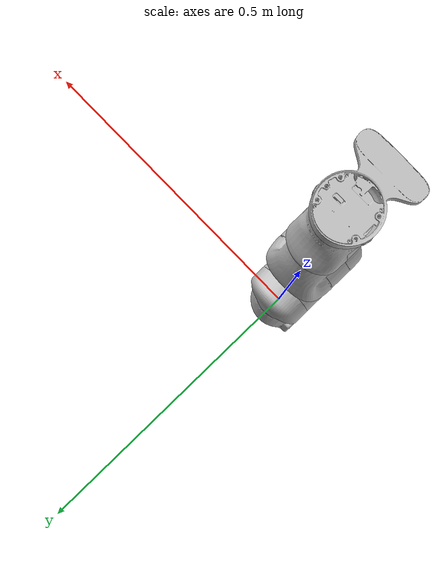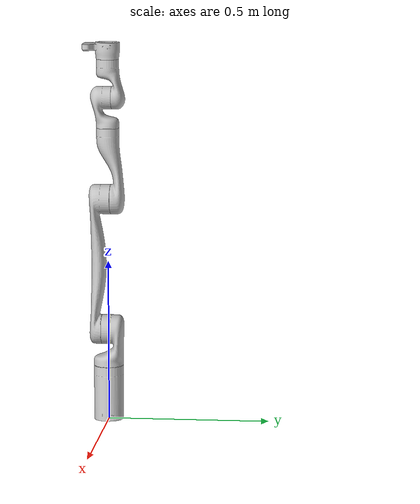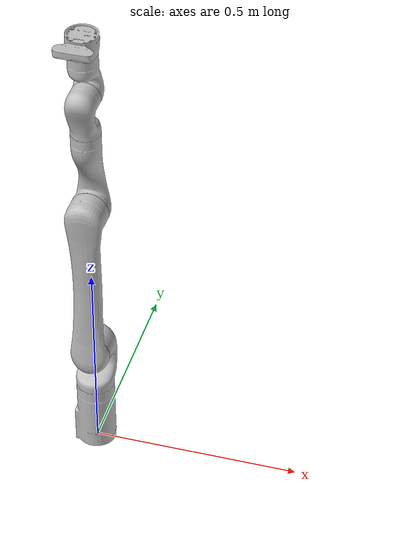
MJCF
<mujoco model="GEN3-6DOF">
  <compiler angle="radian" meshdir="meshes" autolimits="true" eulerseq="zyx"/>
  <option integrator="implicitfast" timestep="0.001" gravity="0 0 -9.81" />
  <default>
    <default class="robot">
      <joint axis="0 0 1" range="-3.1415 3.1415" damping="0.01" armature="0.01" frictionloss="0.01" ref="0.0"/>
      <default class="visual">
        <geom type="mesh" contype="0" conaffinity="0" group="2"/>
      </default>
      <default class="collision">
        <geom type="capsule" group="3"/>
      </default>
      <default class="position">
        <position ctrlrange="-3.1415 3.1415" kp="5000" kv="140" forcerange="-150 150"/>
        <default class="position_unlimited">
          <position ctrlrange="-6.2831 6.2831"/>
        </default>
        <default class="position_wrist">
          <position kp="1200" kv="70" forcerange="-70 370"/>
        </default>
      </default>
    </default>
  </default>

  <asset>
    <material name="gen3_gray" rgba="0.75294 0.75294 0.75294 1" />
    <material name="default_material" rgba="0.7 0.7 0.7 1" />
    <material name="collision_material" rgba="1.0 0.28 0.1 0.9" />
    <mesh name="base_link.STL" file="base_link.STL" content_type="model/stl" />
    <mesh name="shoulder_link.STL" file="shoulder_link.STL" content_type="model/stl" />
    <mesh name="bicep_link.STL" file="bicep_link.STL" content_type="model/stl" />
    <mesh name="forearm_link.STL" file="forearm_link.STL" content_type="model/stl" />
    <mesh name="spherical_wrist_1_link.STL" file="spherical_wrist_1_link.STL" content_type="model/stl" />
    <mesh name="spherical_wrist_2_link.STL" file="spherical_wrist_2_link.STL" content_type="model/stl" />
    <mesh name="bracelet_with_vision_link.STL" file="bracelet_with_vision_link.STL" content_type="model/stl" />
  </asset>

  <worldbody>
    <body name="base_link" pos="0.00000000 0.00000000 0.00000000" quat="1 0 0 0" childclass="robot">
      <geom pos="0 0 0" quat="1.0 0.0 0.0 0.0" type="mesh" mesh="base_link.STL" class="collision" />
      <geom pos="0 0 0" quat="1.0 0.0 0.0 0.0" material="gen3_gray" type="mesh" mesh="base_link.STL" class="visual" />

      <body name="shoulder_link" pos="0 0 0.15643" quat="-3.673205103346574e-06 -0.9999999999932537 -0.0 0.0">
        <joint name="joint_1"/>
        <inertial pos="-2.3E-05 -0.010364 -0.07336" quat="1.0 0.0 0.0 0.0" mass="1.377" diaginertia="0.00457 0.004831 0.001409" />
        <geom pos="0 0 0" quat="1.0 0.0 0.0 0.0" type="mesh" mesh="shoulder_link.STL" class="collision" />
        <geom pos="0 0 0" quat="1.0 0.0 0.0 0.0" material="gen3_gray" type="mesh" mesh="shoulder_link.STL" class="visual" />

        <body name="bicep_link" pos="0 0.005375 -0.12838" quat="0.7071054825112363 0.7071080798594735 0.0 0.0">
          <joint name="joint_2" range="-2.24 2.24"/>
          <inertial pos="3.5E-05 -0.208207 -0.01889" quat="1.0 0.0 0.0 0.0" mass="1.262" diaginertia="0.046752 0.00085 0.047188" />
          <geom pos="0 0 0" quat="1.0 0.0 0.0 0.0" type="mesh" mesh="bicep_link.STL" class="collision" />
          <geom pos="0 0 0" quat="1.0 0.0 0.0 0.0" material="gen3_gray" type="mesh" mesh="bicep_link.STL" class="visual" />

          <body name="forearm_link" pos="0 -0.41 0" quat="-3.673205103346574e-06 0.9999999999932537 0.0 -0.0">
            <joint name="joint_3" range="-2.57 2.57"/>
            <inertial pos="1.8E-05 0.076168 -0.01397" quat="1.0 0.0 0.0 0.0" mass="0.93" diaginertia="0.008292 0.000628 0.008464" />
            <geom pos="0 0 0" quat="1.0 0.0 0.0 0.0" type="mesh" mesh="forearm_link.STL" class="collision" />
            <geom pos="0 0 0" quat="1.0 0.0 0.0 0.0" material="gen3_gray" type="mesh" mesh="forearm_link.STL" class="visual" />

            <body name="spherical_wrist_1_link" pos="0 0.20843 -0.006375" quat="0.7071054825112363 0.7071080798594735 0.0 0.0">
              <joint name="joint_4"/>
              <inertial pos="-1E-06 0.008486 -0.062937" quat="1.0 0.0 0.0 0.0" mass="0.6781" diaginertia="0.001645 0.001666 0.000389" />
              <geom pos="0 0 0" quat="1.0 0.0 0.0 0.0" type="mesh" mesh="spherical_wrist_1_link.STL" class="collision" />
              <geom pos="0 0 0" quat="1.0 0.0 0.0 0.0" material="gen3_gray" type="mesh" mesh="spherical_wrist_1_link.STL" class="visual" />

              <body name="spherical_wrist_2_link" pos="0 -0.00017505 -0.10593" quat="0.7071054825112363 -0.7071080798594735 0.0 0.0">
                <joint name="joint_5" range="-2.09 2.09"/>
                <inertial pos="-1E-06 0.046429 -0.008704" quat="1.0 0.0 0.0 0.0" mass="0.678" diaginertia="0.001685 0.0004 0.001696" />
                <geom pos="0 0 0" quat="1.0 0.0 0.0 0.0" type="mesh" mesh="spherical_wrist_2_link.STL" class="collision" />
                <geom pos="0 0 0" quat="1.0 0.0 0.0 0.0" material="gen3_gray" type="mesh" mesh="spherical_wrist_2_link.STL" class="visual" />

                <body name="bracelet_link" pos="0 0.10593 -0.00017505" quat="0.7071054825112363 0.7071080798594735 0.0 0.0">
                  <joint name="joint_6"/>
                  <inertial pos="0.000281 0.011402 -0.029798" quat="1.0 0.0 0.0 0.0" mass="0.5" diaginertia="0.000587 0.000369 0.000609" />
                  <geom pos="0 0 0" quat="1.0 0.0 0.0 0.0" type="mesh" mesh="bracelet_with_vision_link.STL" class="collision" />
                  <geom pos="0 0 0" quat="1.0 0.0 0.0 0.0" material="gen3_gray" type="mesh" mesh="bracelet_with_vision_link.STL" class="visual" />
                </body>
              </body>
            </body>
          </body>
        </body>
      </body>
      <site name="base_link_site" pos="0 0 0" quat="1 0 0 0" />
      <camera name="front_camera" mode="track" fovy="90.0" quat="4.329780281177467e-17 4.329780281177466e-17 0.7071067811865475 0.7071067811865476" pos="0.0 2.0 0.5" />
      <camera name="side_camera" mode="track" fovy="90.0" quat="-0.5 -0.4999999999999999 0.5 0.5000000000000001" pos="-2.0 0.0 0.5" />
    </body>
  </worldbody>

  <actuator>
    <position name="joint_1" joint="joint_1" class="position" />
    <position name="joint_2" joint="joint_2" class="position" />
    <position name="joint_3" joint="joint_3" class="position" />
    <position name="joint_4" joint="joint_4" class="position" />
    <position name="joint_5" joint="joint_5" class="position" />
    <position name="joint_6" joint="joint_6" class="position" />
  </actuator>
  <keyframe>
    <key name="home"
         qpos="-1.42 -0.01 -1.76 -0.54 -0.79 2.44"
         ctrl="-1.42 -0.01 -1.76 -0.54 -0.79 2.44"/>
    <key name="zero"
         qpos="0 0 0 0 0 0"
         ctrl="0 0 0 0 0 0"/>
  </keyframe>

  <contact>
    <exclude body1="base_link" body2="shoulder_link" />
    <exclude body1="shoulder_link" body2="bicep_link" />
    <exclude body1="bicep_link" body2="forearm_link" />
    <exclude body1="forearm_link" body2="spherical_wrist_1_link" />
    <exclude body1="spherical_wrist_1_link" body2="spherical_wrist_2_link" />
    <exclude body1="spherical_wrist_2_link" body2="bracelet_link" />
  </contact>

  <sensor>
    <framepos name="base_link_site_pos" objtype="site" objname="base_link_site" />
    <framequat name="base_link_site_quat" objtype="site" objname="base_link_site" />
    <framelinvel name="base_link_site_linvel" objtype="site" objname="base_link_site" />
    <frameangvel name="base_link_site_angvel" objtype="site" objname="base_link_site" />
    <velocimeter name="base_link_site_vel" site="base_link_site" />
  </sensor>
</mujoco>
